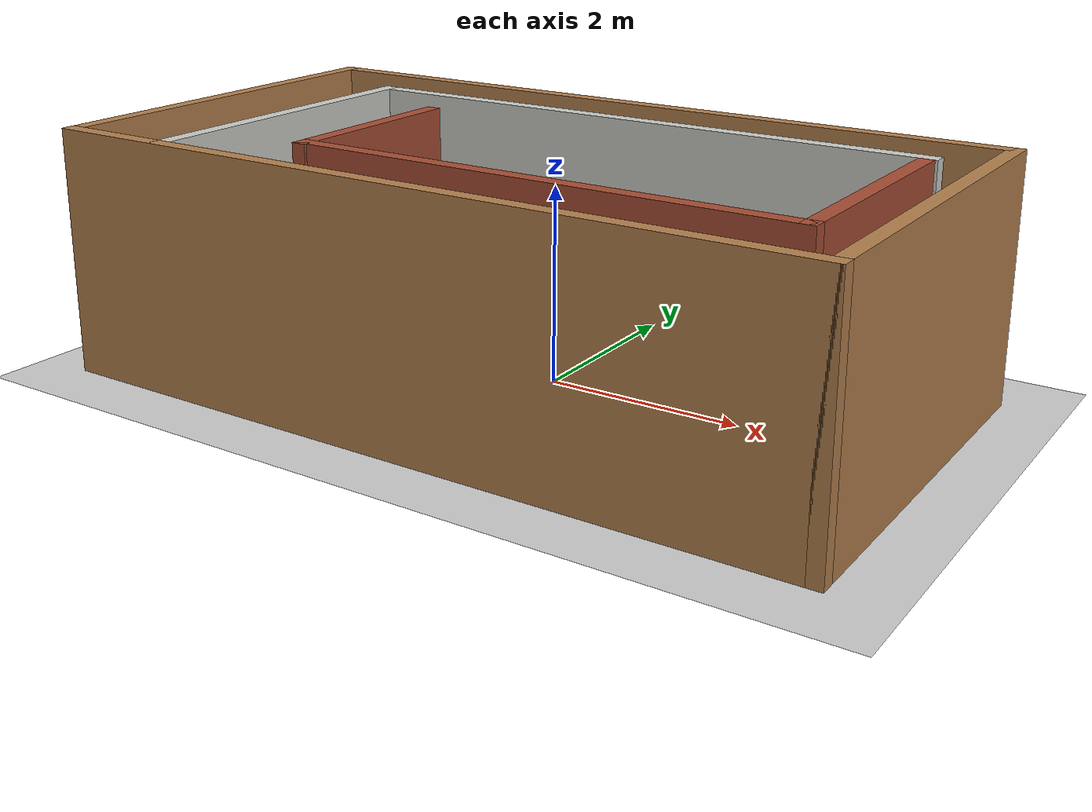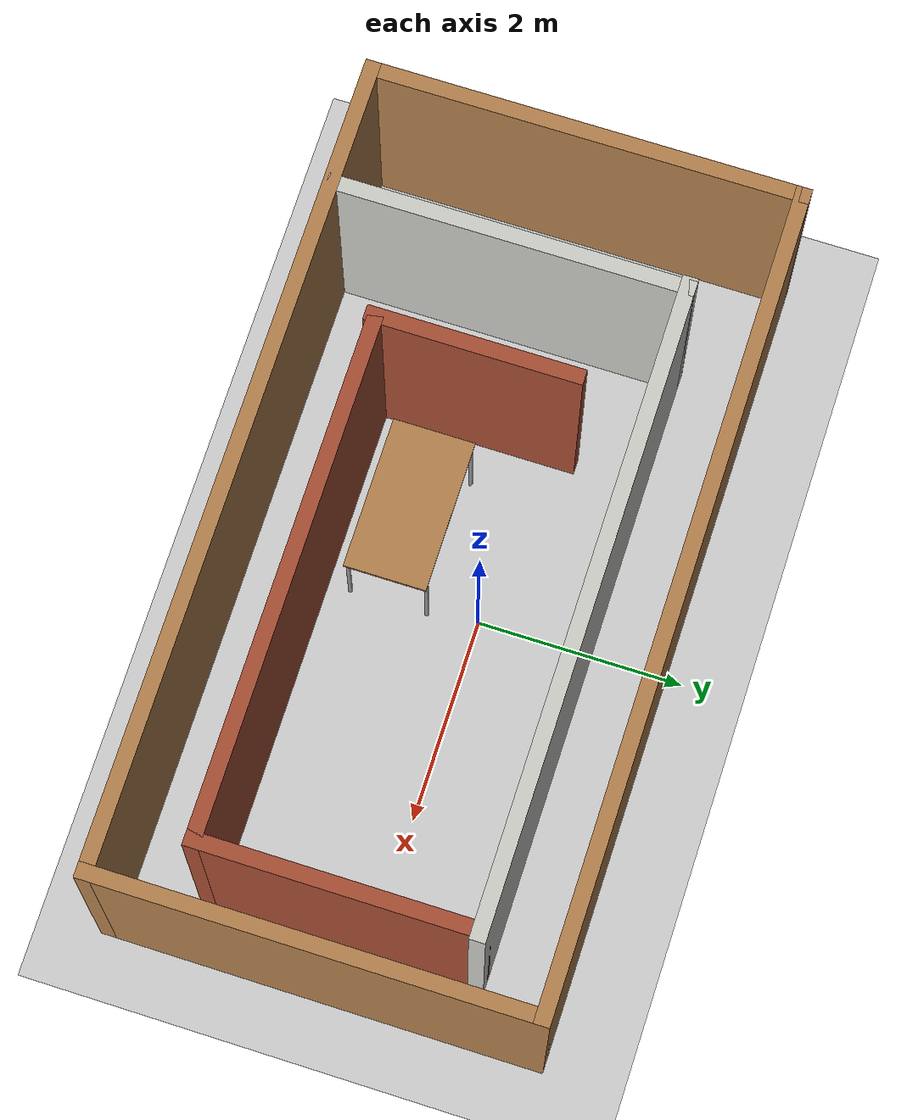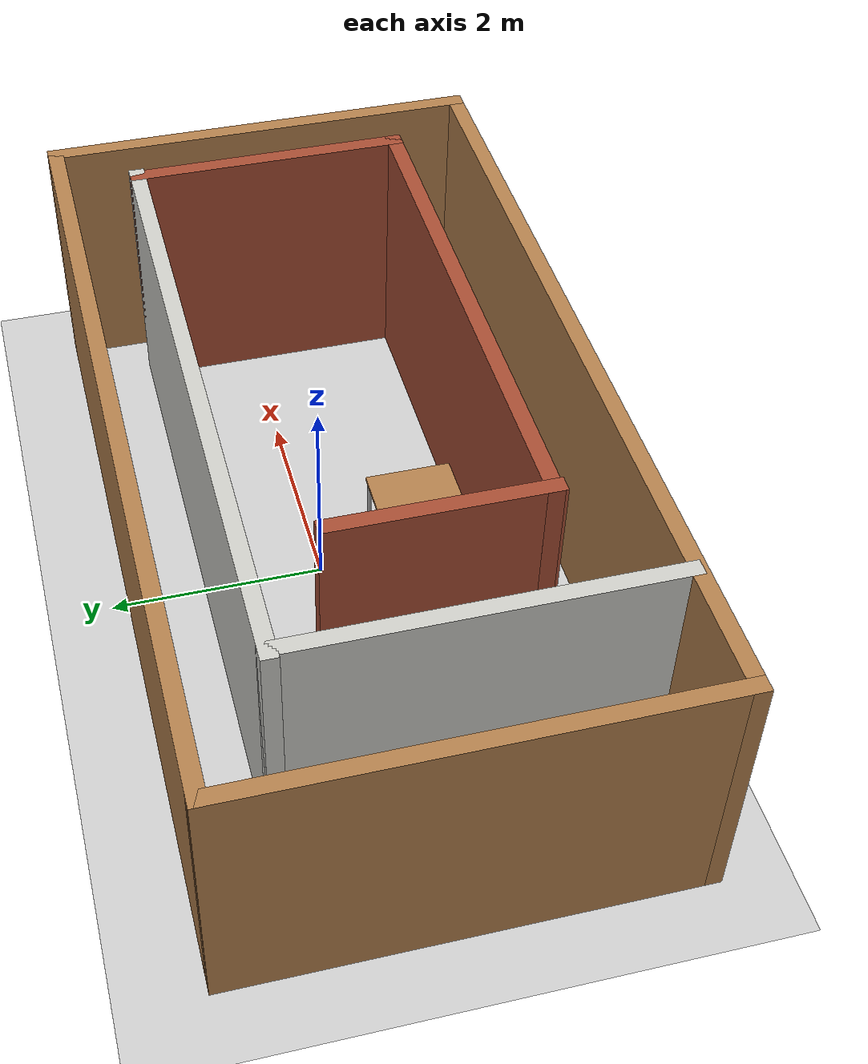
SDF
<sdf version="1.6">
 <world name="default">
  <light name="sun" type="directional">
   <pose>0 0 10 0 -0 0</pose>
   <diffuse>0.8 0.8 0.8 1</diffuse>
   <specular>0.2 0.2 0.2 1</specular>
   <attenuation>
    <range>1000</range>
    <constant>0.9</constant>
    <linear>0.01</linear>
    <quadratic>0.001</quadratic>
   </attenuation>
   <direction>-0.5 0.1 -0.9</direction>
  </light>
  <model name="ground_plane">
   <static>1</static>
   <link name="link">
    <collision name="collision">
     <geometry><plane><normal>0 0 1</normal><size>100 100</size></plane></geometry>
     <surface><friction><ode><mu>100</mu><mu2>50</mu2></ode></friction></surface>
    </collision>
    <visual name="visual">
     <cast_shadows>0</cast_shadows>
     <geometry><plane><normal>0 0 1</normal><size>100 100</size></plane></geometry>
     <material>
      <script><uri>file://media/materials/scripts/gazebo.material</uri><name>Gazebo/Grey</name></script>
     </material>
    </visual>
   </link>
  </model>
  <gravity>0 0 -9.8</gravity>
  <magnetic_field>6e-06 2.3e-05 -4.2e-05</magnetic_field>
  <atmosphere type="adiabatic"/>
  <physics name="default_physics" default="0" type="ode">
   <max_step_size>0.001</max_step_size>
   <real_time_factor>1</real_time_factor>
   <real_time_update_rate>1000</real_time_update_rate>
  </physics>
  <scene><ambient>0.4 0.4 0.4 1</ambient><background>0.7 0.7 0.7 1</background><shadows>1</shadows></scene>
  <audio><device>default</device></audio>
  <spherical_coordinates>
   <surface_model>EARTH_WGS84</surface_model>
   <latitude_deg>0</latitude_deg>
   <longitude_deg>0</longitude_deg>
   <elevation>0</elevation>
   <heading_deg>0</heading_deg>
  </spherical_coordinates>
  <model name="maze">
   <pose>-0.11685 -0.277135 0 0 -0 0</pose>
   <link name="Wall_0">
    <collision name="Wall_0_Collision">
     <geometry><box><size>8 0.15 2.5</size></box></geometry>
     <pose>0 0 1.25 0 -0 0</pose>
    </collision>
    <visual name="Wall_0_Visual">
     <pose>0 0 1.25 0 -0 0</pose>
     <geometry><box><size>8 0.15 2.5</size></box></geometry>
     <material>
      <script><uri>file://media/materials/scripts/gazebo.material</uri><name>Gazebo/Wood</name></script>
      <ambient>1 1 1 1</ambient>
     </material>
     <meta><layer>0</layer></meta>
    </visual>
    <pose>0 -2.05 0 0 -0 0</pose>
   </link>
   <link name="Wall_10">
    <collision name="Wall_10_Collision">
     <geometry><box><size>2.7288 0.15 2.5</size></box></geometry>
     <pose>0 0 1.25 0 -0 0</pose>
    </collision>
    <visual name="Wall_10_Visual">
     <pose>0 0 1.25 0 -0 0</pose>
     <geometry><box><size>2.7288 0.15 2.5</size></box></geometry>
     <material>
      <script><uri>file://media/materials/scripts/gazebo.material</uri><name>Gazebo/Bricks</name></script>
      <ambient>1 1 1 1</ambient>
     </material>
     <meta><layer>0</layer></meta>
    </visual>
    <pose>3.37802 0.02737 0 0 -0 -1.5708</pose>
   </link>
   <link name="Wall_11">
    <collision name="Wall_11_Collision">
     <geometry><box><size>5.17624 0.15 2.5</size></box></geometry>
     <pose>0 0 1.25 0 -0 0</pose>
    </collision>
    <visual name="Wall_11_Visual">
     <pose>0 0 1.25 0 -0 0</pose>
     <geometry><box><size>5.17624 0.15 2.5</size></box></geometry>
     <material>
      <script><uri>file://media/materials/scripts/gazebo.material</uri><name>Gazebo/Bricks</name></script>
      <ambient>1 1 1 1</ambient>
     </material>
     <meta><layer>0</layer></meta>
    </visual>
    <pose>0.865218 -1.26203 0 0 -0 3.14159</pose>
   </link>
   <link name="Wall_12">
    <collision name="Wall_12_Collision">
     <geometry><box><size>2.0586 0.15 2.5</size></box></geometry>
     <pose>0 0 1.25 0 -0 0</pose>
    </collision>
    <visual name="Wall_12_Visual">
     <pose>0 0 1.25 0 -0 0</pose>
     <geometry><box><size>2.0586 0.15 2.5</size></box></geometry>
     <material>
      <script><uri>file://media/materials/scripts/gazebo.material</uri><name>Gazebo/Bricks</name></script>
      <ambient>1 1 1 1</ambient>
     </material>
     <meta><layer>0</layer></meta>
    </visual>
    <pose>-1.64758 -0.33433 0 0 -0 1.5708</pose>
   </link>
   <link name="Wall_2">
    <collision name="Wall_2_Collision">
     <geometry><box><size>4.25 0.15 2.5</size></box></geometry>
     <pose>0 0 1.25 0 -0 0</pose>
    </collision>
    <visual name="Wall_2_Visual">
     <pose>0 0 1.25 0 -0 0</pose>
     <geometry><box><size>4.25 0.15 2.5</size></box></geometry>
     <material>
      <script><uri>file://media/materials/scripts/gazebo.material</uri><name>Gazebo/Wood</name></script>
      <ambient>1 1 1 1</ambient>
     </material>
     <meta><layer>0</layer></meta>
    </visual>
    <pose>-3.925 -0 0 0 -0 1.5708</pose>
   </link>
   <link name="Wall_3">
    <collision name="Wall_3_Collision">
     <geometry><box><size>8 0.15 2.5</size></box></geometry>
     <pose>0 0 1.25 0 -0 0</pose>
    </collision>
    <visual name="Wall_3_Visual">
     <pose>0 0 1.25 0 -0 0</pose>
     <geometry><box><size>8 0.15 2.5</size></box></geometry>
     <material>
      <script><uri>file://media/materials/scripts/gazebo.material</uri><name>Gazebo/Wood</name></script>
      <ambient>1 1 1 1</ambient>
     </material>
     <meta><layer>0</layer></meta>
    </visual>
    <pose>0 2.05 0 0 -0 0</pose>
   </link>
   <link name="Wall_4">
    <collision name="Wall_4_Collision">
     <geometry><box><size>4.25 0.15 2.5</size></box></geometry>
     <pose>0 0 1.25 0 -0 0</pose>
    </collision>
    <visual name="Wall_4_Visual">
     <pose>0 0 1.25 0 -0 0</pose>
     <geometry><box><size>4.25 0.15 2.5</size></box></geometry>
     <material>
      <script><uri>file://media/materials/scripts/gazebo.material</uri><name>Gazebo/Wood</name></script>
      <ambient>1 1 1 1</ambient>
     </material>
     <meta><layer>0</layer></meta>
    </visual>
    <pose>3.925 -0 0 0 -0 -1.5708</pose>
   </link>
   <link name="Wall_8">
    <collision name="Wall_8_Collision">
     <geometry><box><size>3.4788 0.15 2.5</size></box></geometry>
     <pose>0 0 1.25 0 -0 0</pose>
    </collision>
    <visual name="Wall_8_Visual">
     <pose>0 0 1.25 0 -0 0</pose>
     <geometry><box><size>3.4788 0.15 2.5</size></box></geometry>
     <material>
      <script><uri>file://media/materials/scripts/gazebo.material</uri><name>Gazebo/CeilingTiled</name></script>
      <ambient>1 1 1 1</ambient>
     </material>
     <meta><layer>0</layer></meta>
    </visual>
    <pose>-2.75398 -0.34763 0 0 -0 1.5708</pose>
   </link>
   <link name="Wall_9">
    <collision name="Wall_9_Collision">
     <geometry><box><size>6.3352 0.15 2.5</size></box></geometry>
     <pose>0 0 1.25 0 -0 0</pose>
    </collision>
    <visual name="Wall_9_Visual">
     <pose>0 0 1.25 0 -0 0</pose>
     <geometry><box><size>6.3352 0.15 2.5</size></box></geometry>
     <material>
      <script><uri>file://media/materials/scripts/gazebo.material</uri><name>Gazebo/CeilingTiled</name></script>
      <ambient>1 1 1 1</ambient>
     </material>
     <meta><layer>0</layer></meta>
    </visual>
    <pose>0.312018 1.31677 0 0 -0 0</pose>
   </link>
   <static>1</static>
  </model>
  <model name="table">
   <static>1</static>
   <link name="link">
    <collision name="surface">
     <pose>0 0 1 0 -0 0</pose>
     <geometry><box><size>1.5 0.8 0.03</size></box></geometry>
     <surface><friction><ode><mu>0.6</mu><mu2>0.6</mu2></ode></friction></surface>
    </collision>
    <visual name="visual1">
     <pose>0 0 1 0 -0 0</pose>
     <geometry><box><size>1.5 0.8 0.03</size></box></geometry>
     <material>
      <script><uri>file://media/materials/scripts/gazebo.material</uri><name>Gazebo/Wood</name></script>
     </material>
    </visual>
    <collision name="front_left_leg">
     <pose>0.68 0.38 0.5 0 -0 0</pose>
     <geometry><cylinder><radius>0.02</radius><length>1</length></cylinder></geometry>
    </collision>
    <visual name="front_left_leg">
     <pose>0.68 0.38 0.5 0 -0 0</pose>
     <geometry><cylinder><radius>0.02</radius><length>1</length></cylinder></geometry>
     <material>
      <script><uri>file://media/materials/scripts/gazebo.material</uri><name>Gazebo/Grey</name></script>
     </material>
    </visual>
    <collision name="front_right_leg">
     <pose>0.68 -0.38 0.5 0 -0 0</pose>
     <geometry><cylinder><radius>0.02</radius><length>1</length></cylinder></geometry>
    </collision>
    <visual name="front_right_leg">
     <pose>0.68 -0.38 0.5 0 -0 0</pose>
     <geometry><cylinder><radius>0.02</radius><length>1</length></cylinder></geometry>
     <material>
      <script><uri>file://media/materials/scripts/gazebo.material</uri><name>Gazebo/Grey</name></script>
     </material>
    </visual>
    <collision name="back_right_leg">
     <pose>-0.68 -0.38 0.5 0 -0 0</pose>
     <geometry><cylinder><radius>0.02</radius><length>1</length></cylinder></geometry>
    </collision>
    <visual name="back_right_leg">
     <pose>-0.68 -0.38 0.5 0 -0 0</pose>
     <geometry><cylinder><radius>0.02</radius><length>1</length></cylinder></geometry>
     <material>
      <script><uri>file://media/materials/scripts/gazebo.material</uri><name>Gazebo/Grey</name></script>
     </material>
    </visual>
    <collision name="back_left_leg">
     <pose>-0.68 0.38 0.5 0 -0 0</pose>
     <geometry><cylinder><radius>0.02</radius><length>1</length></cylinder></geometry>
    </collision>
    <visual name="back_left_leg">
     <pose>-0.68 0.38 0.5 0 -0 0</pose>
     <geometry><cylinder><radius>0.02</radius><length>1</length></cylinder></geometry>
     <material>
      <script><uri>file://media/materials/scripts/gazebo.material</uri><name>Gazebo/Grey</name></script>
     </material>
    </visual>
   </link>
   <pose>-0.616634 -0.868903 0 0 -0 0</pose>
  </model>
 </world>
</sdf>
